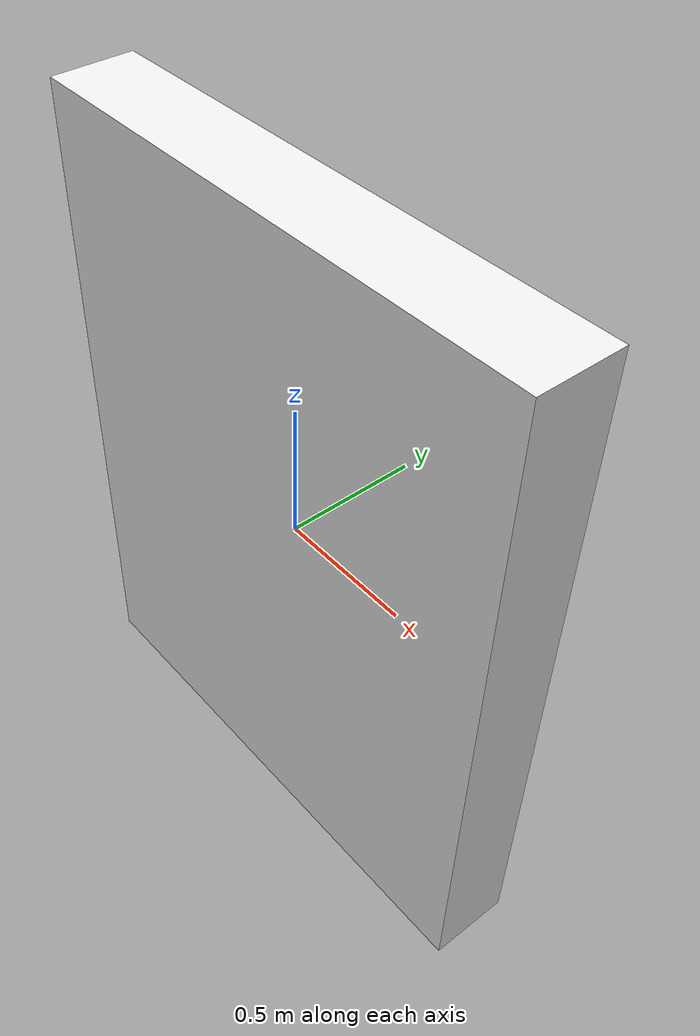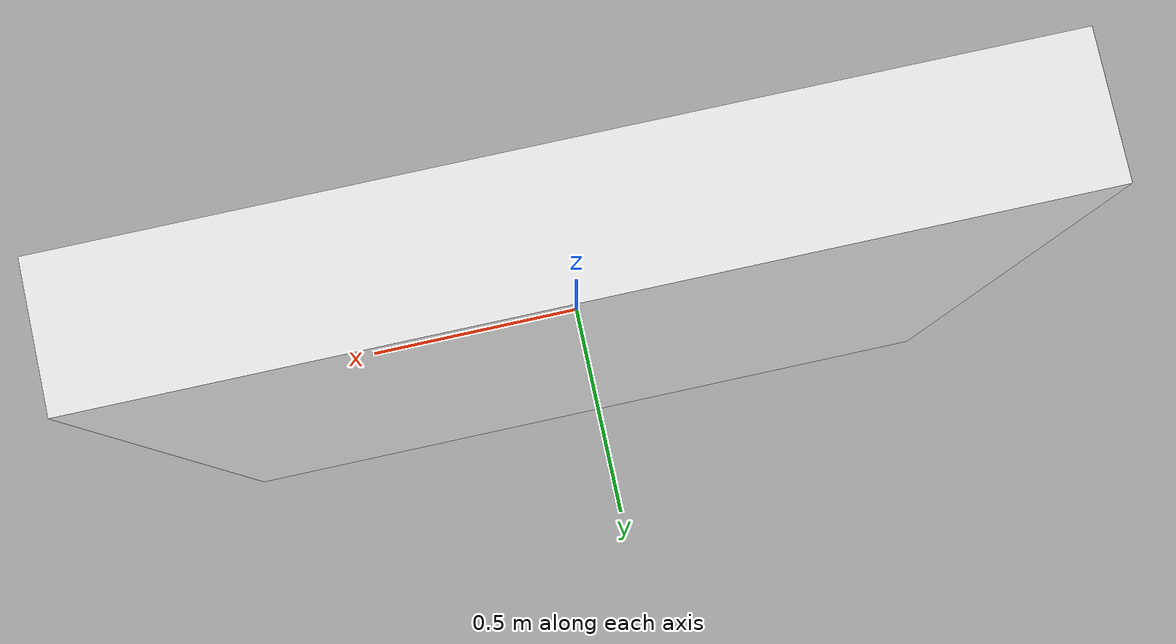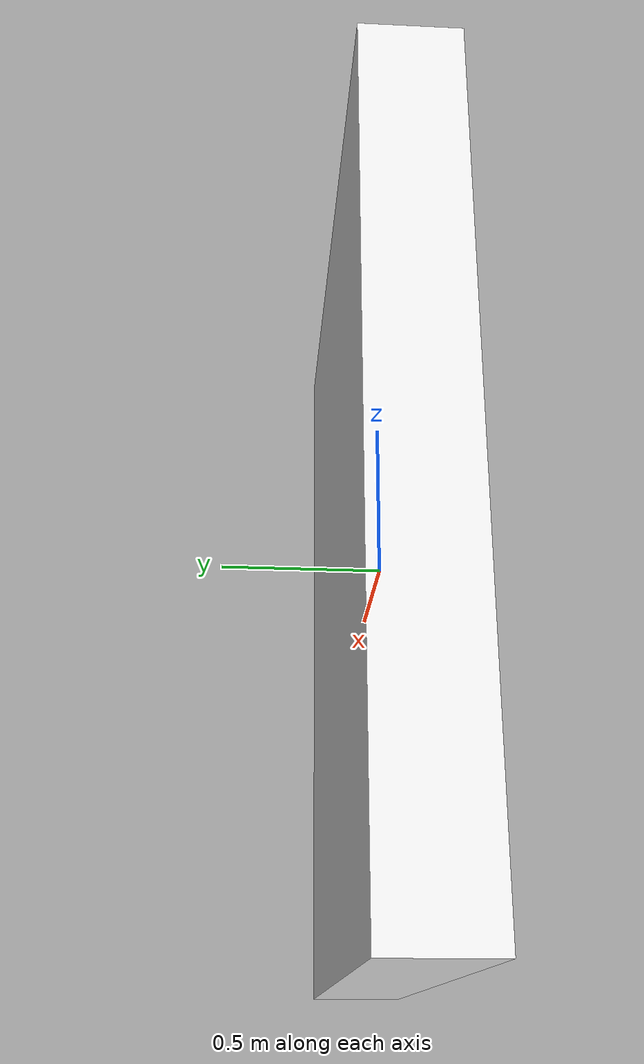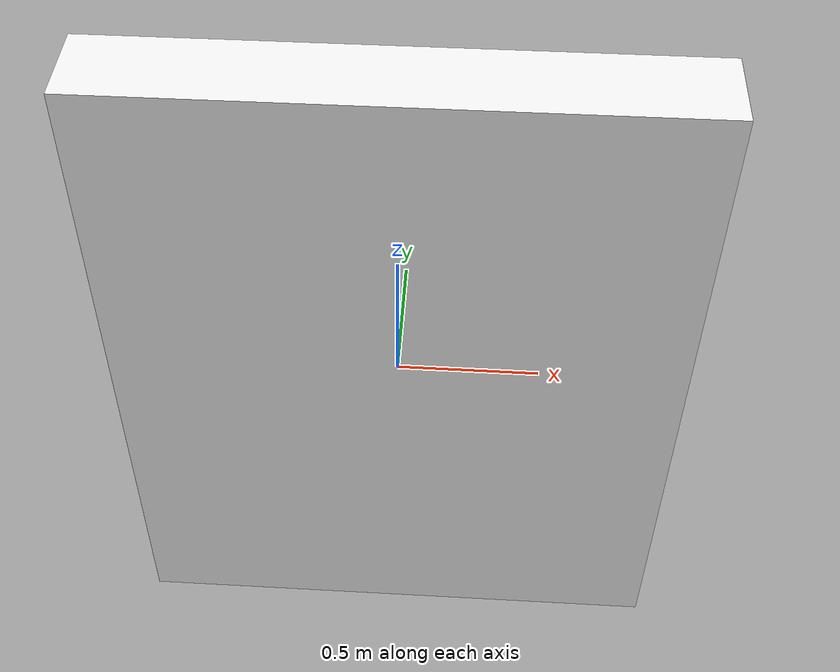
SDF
<?xml version="1.0" ?>
<sdf version='1.4'>
  <model name="basic_wall">
      <static>1</static>
      <link name='link'>
        <collision name='collision'>
          <geometry>
            <box>
              <size>2.0 0.3 2.5</size>
            </box>
          </geometry>
          <surface>
            <friction>
              <ode>
                <mu>5.0</mu>
                <mu2>5.0</mu2>
              </ode>
            </friction>
          </surface>
        </collision>
        <visual name='visual'>
          <geometry>
            <box>
              <size>2.0 0.3 2.5</size>
            </box>
          </geometry>
          <material>
            <script>
              <uri>file://media/materials/scripts/gazebo.material</uri>
              <name>Gazebo/White</name>
            </script>
          </material>
        </visual>
        <self_collide>0</self_collide>
        <kinematic>0</kinematic>
        <gravity>0</gravity>
      </link>
  </model>
</sdf>
